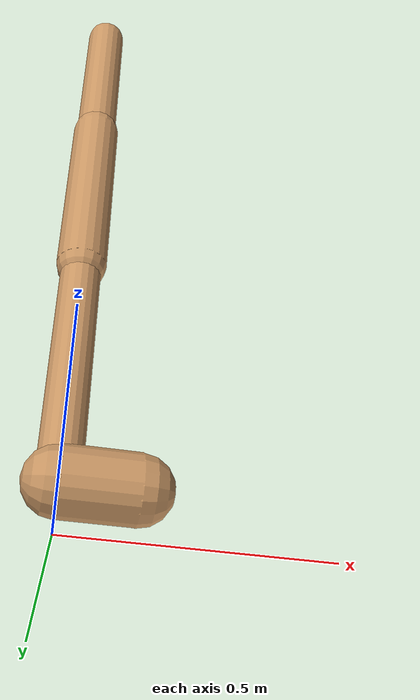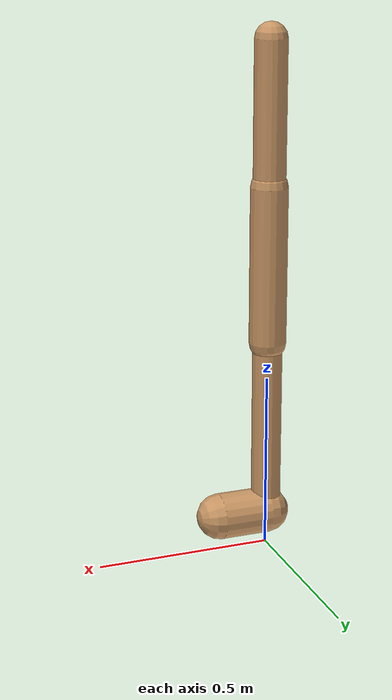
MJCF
<mujoco model="walker2d">
  <compiler angle="degree" coordinate="global" inertiafromgeom="true" />
  <default>
    <joint armature="0.01" damping=".1" limited="true" />
    <geom conaffinity="0" condim="3" contype="1" density="1000" friction="0.8 .1 .1" rgba="0.8 0.6 .4 1" />
  </default>
  <option integrator="RK4" timestep="0.002" />
  <worldbody>

    <body name="torso" pos="0 0 -0.01881131480814207">
      <joint armature="0" axis="1 0 0" damping="0" limited="false" name="ignorex" pos="0 0 0" stiffness="0" type="slide" />
      <joint armature="0" axis="0 0 1" damping="0" limited="false" name="ignorez" pos="0 0 0" ref="1.25" stiffness="0" type="slide" />
      <joint armature="0" axis="0 1 0" damping="0" limited="false" name="ignorey" pos="0 0 0" stiffness="0" type="hinge" />
      <geom fromto="0 0 1.45 0 0 1.05" name="torso_geom" size="0.04561675699552948" type="capsule" />
      <body name="thigh">
        <joint axis="0 -1 0" name="thigh_joint" pos="0 0 1.05" range="-150 0" type="hinge" />
        <geom fromto="0.0 0.0 1.05 0.0 0.0 0.6089106228038568" name="thigh_geom" size="0.052586573342082665" type="capsule" />
        <body name="leg" pos="0.0 0.0 0.008910622803856794">
          <joint axis="0 -1 0" name="leg_joint" pos="0 0 0.6" range="-150 0" type="hinge" />
          <geom fromto="0.0 0.0 0.6 0.0 0.0 0.1099006920042853" name="leg_geom" size="0.042069258673666135" type="capsule" />
          <body name="foot" pos="0.0 0.0 0.009900692004285297">
            <joint axis="0 -1 0" name="foot_joint" pos="0 0 0.1" range="-45 45" type="hinge" />
            <geom fromto="0.0 0.0 0.1 0.14183204064822272 0.0 0.1" name="foot_geom" size="0.06571163600623277" type="capsule" />
          </body>
        </body>
      </body>

      <body name="thigh_left">
        <joint axis="0 -1 0" name="thigh_left_joint" pos="0 0 1.05" range="-150 0" type="hinge" />
        <geom fromto="0.0 0.0 1.05 0.0 0.0 0.6089106228038568" name="thigh_left_geom" rgba=".7 .3 .6 1" size="0.052586573342082665" type="capsule" />
        <body name="leg_left" pos="0.0 0.0 0.008910622803856794">
          <joint axis="0 -1 0" name="leg_left_joint" pos="0 0 0.6" range="-150 0" type="hinge" />
          <geom fromto="0.0 0.0 0.6 0.0 0.0 0.1099006920042853" name="leg_left_geom" rgba=".7 .3 .6 1" size="0.042069258673666135" type="capsule" />
          <body name="foot_left" pos="0.0 0.0 0.009900692004285297">
            <joint axis="0 -1 0" name="foot_left_joint" pos="0 0 0.1" range="-45 45" type="hinge" />
            <geom fromto="0.0 0.0 0.1 0.14183204064822272 0.0 0.1" name="foot_left_geom" rgba=".7 .3 .6 1" size="0.06571163600623277" type="capsule" />
          </body>
        </body>
      </body>
    </body>
  </worldbody>
  <actuator>

    <motor ctrllimited="true" ctrlrange="-1.0 1.0" gear="100" joint="thigh_joint" />
    <motor ctrllimited="true" ctrlrange="-1.0 1.0" gear="100" joint="leg_joint" />
    <motor ctrllimited="true" ctrlrange="-1.0 1.0" gear="100" joint="foot_joint" />
    <motor ctrllimited="true" ctrlrange="-1.0 1.0" gear="100" joint="thigh_left_joint" />
    <motor ctrllimited="true" ctrlrange="-1.0 1.0" gear="100" joint="leg_left_joint" />
    <motor ctrllimited="true" ctrlrange="-1.0 1.0" gear="100" joint="foot_left_joint" />

  </actuator>
</mujoco>
